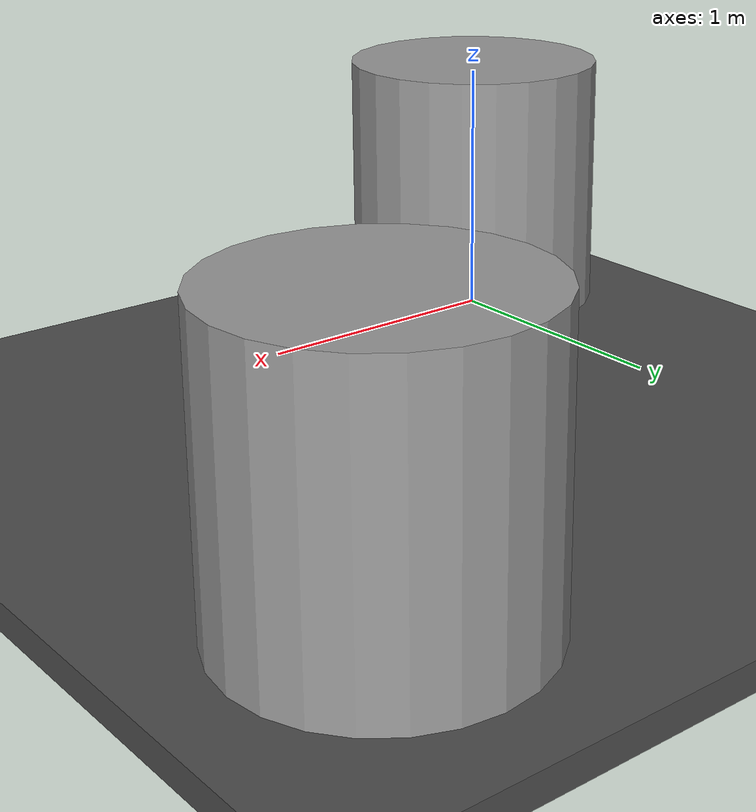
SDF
<sdf version="1.7">
 <world name="default">
  <light name="sun" type="directional">
   <pose>0 0 10 0 -0 0</pose>
   <diffuse>0.8 0.8 0.8 1</diffuse>
   <specular>0.2 0.2 0.2 1</specular>
   <attenuation>
    <range>1000</range>
    <constant>0.9</constant>
    <linear>0.01</linear>
    <quadratic>0.001</quadratic>
   </attenuation>
   <direction>-0.5 0.1 -0.9</direction>
   <spot><inner_angle>0</inner_angle><outer_angle>0</outer_angle><falloff>0</falloff></spot>
  </light>
  <model name="ground_plane">
   <static>1</static>
   <link name="link">
    <collision name="collision">
     <geometry><plane><normal>0 0 1</normal><size>100 100</size></plane></geometry>
     <surface>
      <contact><collide_bitmask>65535</collide_bitmask></contact>
      <friction><ode><mu>100</mu><mu2>50</mu2></ode></friction>
     </surface>
    </collision>
    <visual name="visual">
     <cast_shadows>0</cast_shadows>
     <geometry><plane><normal>0 0 1</normal><size>100 100</size></plane></geometry>
     <material>
      <script><uri>file://media/materials/scripts/gazebo.material</uri><name>Gazebo/Grey</name></script>
     </material>
    </visual>
   </link>
  </model>
  <model name="asphalt_plane">
   <static>1</static>
   <link name="link">
    <collision name="collision"><geometry><box><size>200 200 0.1</size></box></geometry></collision>
    <visual name="visual">
     <cast_shadows>0</cast_shadows>
     <geometry><box><size>200 200 0.1</size></box></geometry>
     <material>
      <script>
       <uri>model://asphalt_plane/materials/scripts</uri>
       <uri>model://asphalt_plane/materials/textures</uri>
       <name>vrc/asphalt</name>
      </script>
     </material>
    </visual>
   </link>
  </model>
  <physics name="default_physics" default="0" type="ode">
   <ode>
    <solver>
     <type>quick</type>
     <iters>50</iters>
     <sor>1</sor>
     <use_dynamic_moi_rescaling>0</use_dynamic_moi_rescaling>
    </solver>
    <constraints>
     <cfm>0</cfm>
     <erp>0.2</erp>
     <contact_max_correcting_vel>100</contact_max_correcting_vel>
     <contact_surface_layer>0.001</contact_surface_layer>
    </constraints>
   </ode>
   <max_step_size>0.004</max_step_size>
   <real_time_factor>1</real_time_factor>
   <real_time_update_rate>250</real_time_update_rate>
  </physics>
  <gravity>0 0 -9.8066</gravity>
  <magnetic_field>6e-06 2.3e-05 -4.2e-05</magnetic_field>
  <atmosphere type="adiabatic"/>
  <scene><ambient>0.4 0.4 0.4 1</ambient><background>0.7 0.7 0.7 1</background><shadows>1</shadows></scene>
  <spherical_coordinates>
   <surface_model>EARTH_WGS84</surface_model>
   <latitude_deg>0</latitude_deg>
   <longitude_deg>0</longitude_deg>
   <elevation>0</elevation>
   <heading_deg>0</heading_deg>
  </spherical_coordinates>
  <model name="unit_cylinder">
   <pose>2.00009 2.00008 0.550092 -0.000172 -6.7e-05 -0.000424</pose>
   <link name="link">
    <inertial>
     <mass>1</mass>
     <inertia><ixx>0.145833</ixx><ixy>0</ixy><ixz>0</ixz><iyy>0.145833</iyy><iyz>0</iyz><izz>0.125</izz></inertia>
    </inertial>
    <collision name="collision">
     <geometry><cylinder><radius>0.5</radius><length>1</length></cylinder></geometry>
    </collision>
    <visual name="visual">
     <geometry><cylinder><radius>0.5</radius><length>1</length></cylinder></geometry>
     <material>
      <script><name>Gazebo/Grey</name><uri>file://media/materials/scripts/gazebo.material</uri></script>
     </material>
    </visual>
   </link>
  </model>
  <model name="unit_cylinder_0">
   <pose>-4.6e-05 0.000109 0.550023 4.3e-05 1.7e-05 -0.000668</pose>
   <link name="link">
    <inertial>
     <mass>1</mass>
     <inertia><ixx>0.145833</ixx><ixy>0</ixy><ixz>0</ixz><iyy>0.145833</iyy><iyz>0</iyz><izz>0.125</izz></inertia>
    </inertial>
    <collision name="collision">
     <geometry><cylinder><radius>0.5</radius><length>1</length></cylinder></geometry>
    </collision>
    <visual name="visual">
     <geometry><cylinder><radius>0.5</radius><length>1</length></cylinder></geometry>
     <material>
      <script><name>Gazebo/Grey</name><uri>file://media/materials/scripts/gazebo.material</uri></script>
     </material>
    </visual>
   </link>
  </model>
 </world>
</sdf>
